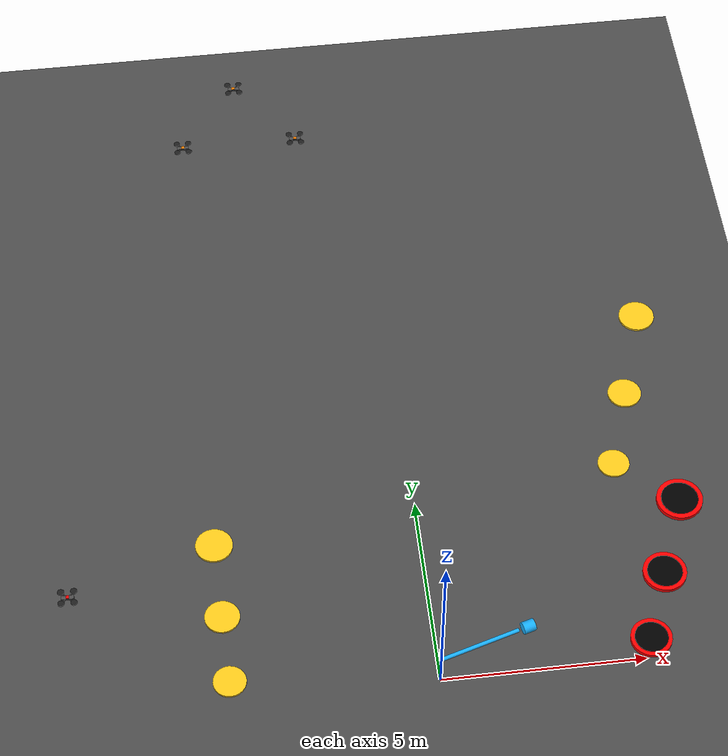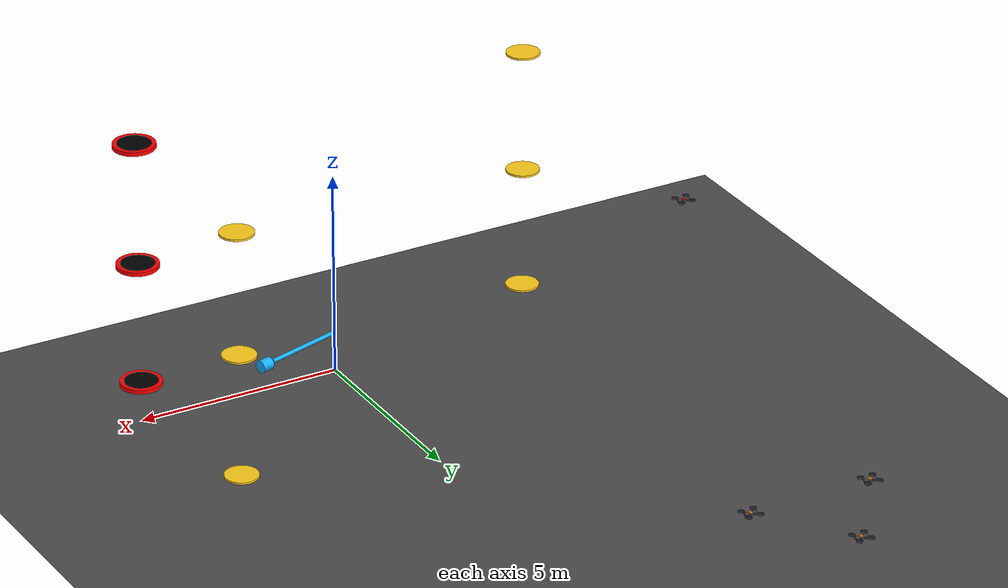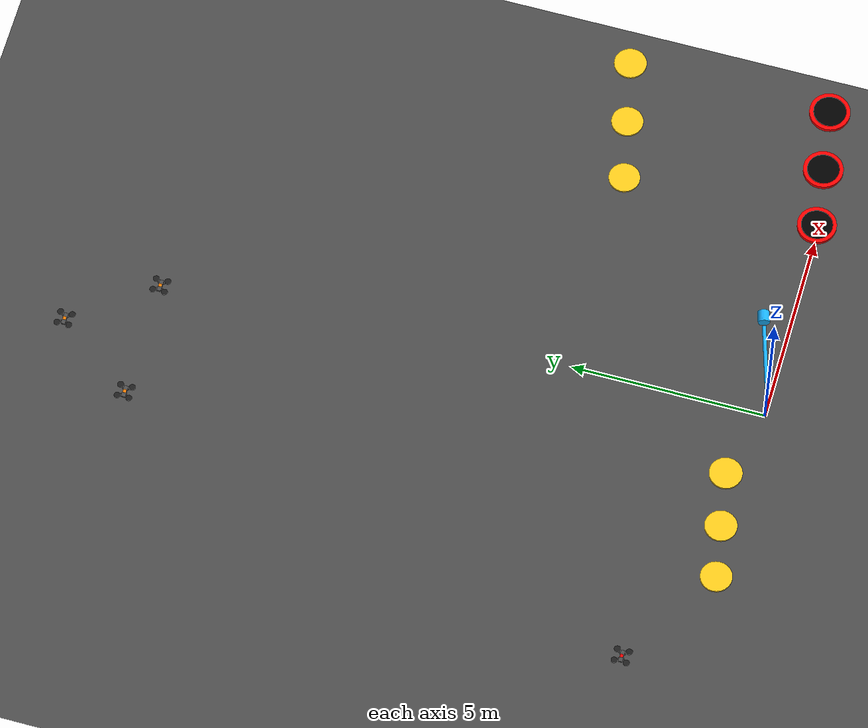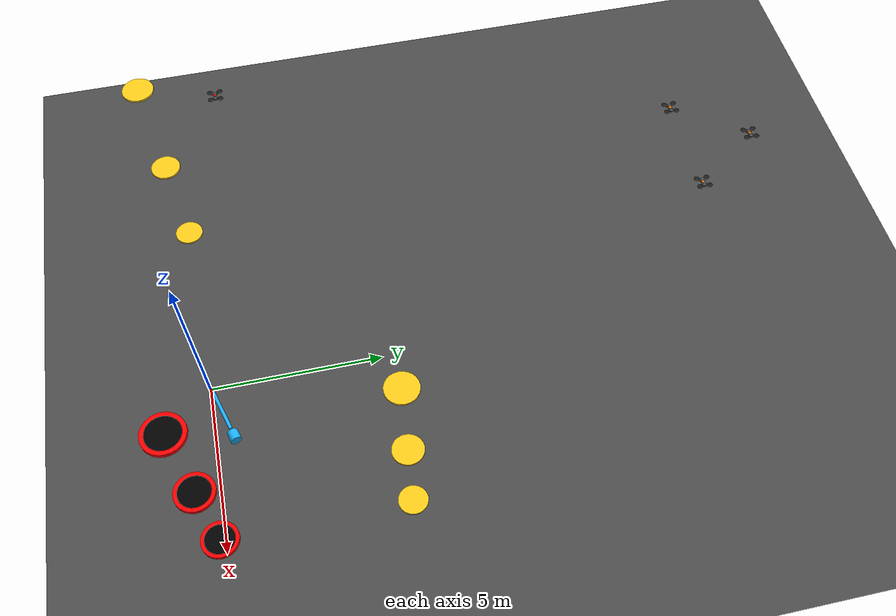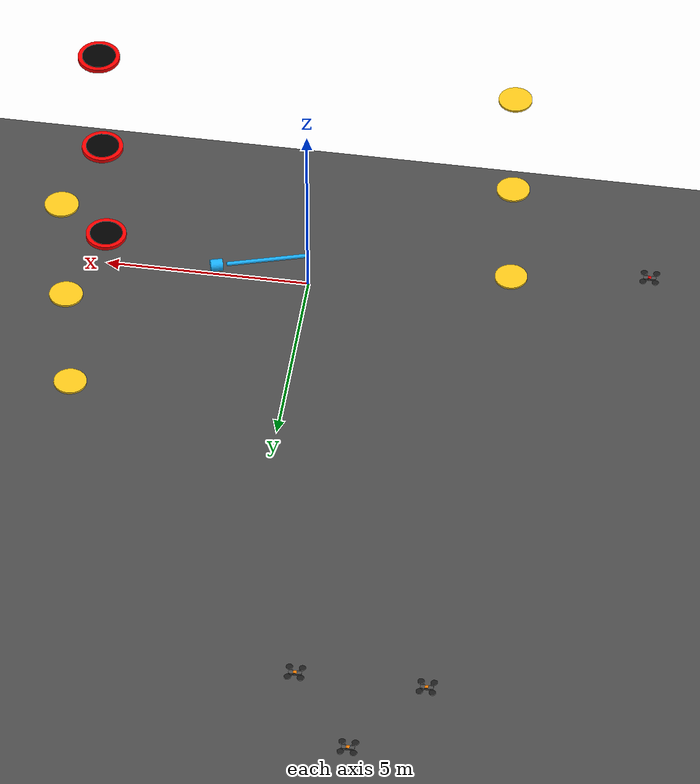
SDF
<sdf version="1.6">
 <world name="formation_comparison_world">
  <model name="ground">
   <static>true</static>
   <link name="link">
    <collision name="collision">
     <geometry><plane><normal>0 0 1</normal><size>100 100</size></plane></geometry>
    </collision>
    <visual name="visual">
     <geometry><plane><normal>0 0 1</normal><size>100 100</size></plane></geometry>
     <material>
      <script><uri>file://media/materials/scripts/gazebo.material</uri><name>Gazebo/Asphalt</name></script>
     </material>
    </visual>
   </link>
  </model>
  <model name="agent_5">
   <pose>-8.5 1.5 3.0 0 0 0</pose>
   <static>false</static>
   <link name="base_link">
    <inertial><mass>1.5</mass><inertia><ixx>0.03</ixx><iyy>0.03</iyy><izz>0.05</izz></inertia></inertial>
    <visual name="body">
     <geometry><box><size>0.3 0.1 0.05</size></box></geometry>
     <material>
      <script><uri>file://media/materials/scripts/gazebo.material</uri><name>Gazebo/DarkGrey</name></script>
     </material>
    </visual>
    <visual name="arm1">
     <pose>0.1 0.1 0 0 0 0.785</pose>
     <geometry><box><size>0.25 0.02 0.02</size></box></geometry>
     <material>
      <script><uri>file://media/materials/scripts/gazebo.material</uri><name>Gazebo/DarkGrey</name></script>
     </material>
    </visual>
    <visual name="arm2">
     <pose>-0.1 0.1 0 0 0 -0.785</pose>
     <geometry><box><size>0.25 0.02 0.02</size></box></geometry>
     <material>
      <script><uri>file://media/materials/scripts/gazebo.material</uri><name>Gazebo/DarkGrey</name></script>
     </material>
    </visual>
    <visual name="arm3">
     <pose>0.1 -0.1 0 0 0 -0.785</pose>
     <geometry><box><size>0.25 0.02 0.02</size></box></geometry>
     <material>
      <script><uri>file://media/materials/scripts/gazebo.material</uri><name>Gazebo/DarkGrey</name></script>
     </material>
    </visual>
    <visual name="arm4">
     <pose>-0.1 -0.1 0 0 0 0.785</pose>
     <geometry><box><size>0.25 0.02 0.02</size></box></geometry>
     <material>
      <script><uri>file://media/materials/scripts/gazebo.material</uri><name>Gazebo/DarkGrey</name></script>
     </material>
    </visual>
    <visual name="indicator">
     <pose>0 0 0.03 0 0 0</pose>
     <geometry><box><size>0.08 0.08 0.01</size></box></geometry>
     <material><ambient>1 0 0 1</ambient><diffuse>1 0 0 1</diffuse><emissive>1 0 0 1</emissive></material>
    </visual>
    <visual name="prop_fl">
     <pose>0.15 0.15 0.02 0 0 0</pose>
     <geometry><cylinder><radius>0.08</radius><length>0.01</length></cylinder></geometry>
     <material>
      <script><uri>file://media/materials/scripts/gazebo.material</uri><name>Gazebo/Black</name></script>
     </material>
    </visual>
    <visual name="prop_fr">
     <pose>0.15 -0.15 0.02 0 0 0</pose>
     <geometry><cylinder><radius>0.08</radius><length>0.01</length></cylinder></geometry>
     <material>
      <script><uri>file://media/materials/scripts/gazebo.material</uri><name>Gazebo/Black</name></script>
     </material>
    </visual>
    <visual name="prop_rl">
     <pose>-0.15 0.15 0.02 0 0 0</pose>
     <geometry><cylinder><radius>0.08</radius><length>0.01</length></cylinder></geometry>
     <material>
      <script><uri>file://media/materials/scripts/gazebo.material</uri><name>Gazebo/Black</name></script>
     </material>
    </visual>
    <visual name="prop_rr">
     <pose>-0.15 -0.15 0.02 0 0 0</pose>
     <geometry><cylinder><radius>0.08</radius><length>0.01</length></cylinder></geometry>
     <material>
      <script><uri>file://media/materials/scripts/gazebo.material</uri><name>Gazebo/Black</name></script>
     </material>
    </visual>
    <collision name="collision"><geometry><box><size>0.4 0.4 0.1</size></box></geometry></collision>
   </link>
   <plugin name="simple_drone_plugin" filename="libsimple_drone_plugin.so">
    <namespace>agent_5</namespace>
    <target_altitude>3.0</target_altitude>
   </plugin>
  </model>
  <model name="agent_6">
   <pose>-5 15.0 3.0 0 0 0</pose>
   <static>false</static>
   <link name="base_link">
    <inertial><mass>1.5</mass><inertia><ixx>0.03</ixx><iyy>0.03</iyy><izz>0.05</izz></inertia></inertial>
    <visual name="body">
     <geometry><box><size>0.3 0.1 0.05</size></box></geometry>
     <material>
      <script><uri>file://media/materials/scripts/gazebo.material</uri><name>Gazebo/DarkGrey</name></script>
     </material>
    </visual>
    <visual name="arm1">
     <pose>0.1 0.1 0 0 0 0.785</pose>
     <geometry><box><size>0.25 0.02 0.02</size></box></geometry>
     <material>
      <script><uri>file://media/materials/scripts/gazebo.material</uri><name>Gazebo/DarkGrey</name></script>
     </material>
    </visual>
    <visual name="arm2">
     <pose>-0.1 0.1 0 0 0 -0.785</pose>
     <geometry><box><size>0.25 0.02 0.02</size></box></geometry>
     <material>
      <script><uri>file://media/materials/scripts/gazebo.material</uri><name>Gazebo/DarkGrey</name></script>
     </material>
    </visual>
    <visual name="arm3">
     <pose>0.1 -0.1 0 0 0 -0.785</pose>
     <geometry><box><size>0.25 0.02 0.02</size></box></geometry>
     <material>
      <script><uri>file://media/materials/scripts/gazebo.material</uri><name>Gazebo/DarkGrey</name></script>
     </material>
    </visual>
    <visual name="arm4">
     <pose>-0.1 -0.1 0 0 0 0.785</pose>
     <geometry><box><size>0.25 0.02 0.02</size></box></geometry>
     <material>
      <script><uri>file://media/materials/scripts/gazebo.material</uri><name>Gazebo/DarkGrey</name></script>
     </material>
    </visual>
    <visual name="indicator">
     <pose>0 0 0.03 0 0 0</pose>
     <geometry><box><size>0.08 0.08 0.01</size></box></geometry>
     <material><ambient>1 0.5 0 1</ambient><diffuse>1 0.5 0 1</diffuse><emissive>1 0.5 0 1</emissive></material>
    </visual>
    <visual name="prop_fl">
     <pose>0.15 0.15 0.02 0 0 0</pose>
     <geometry><cylinder><radius>0.08</radius><length>0.01</length></cylinder></geometry>
     <material>
      <script><uri>file://media/materials/scripts/gazebo.material</uri><name>Gazebo/Black</name></script>
     </material>
    </visual>
    <visual name="prop_fr">
     <pose>0.15 -0.15 0.02 0 0 0</pose>
     <geometry><cylinder><radius>0.08</radius><length>0.01</length></cylinder></geometry>
     <material>
      <script><uri>file://media/materials/scripts/gazebo.material</uri><name>Gazebo/Black</name></script>
     </material>
    </visual>
    <visual name="prop_rl">
     <pose>-0.15 0.15 0.02 0 0 0</pose>
     <geometry><cylinder><radius>0.08</radius><length>0.01</length></cylinder></geometry>
     <material>
      <script><uri>file://media/materials/scripts/gazebo.material</uri><name>Gazebo/Black</name></script>
     </material>
    </visual>
    <visual name="prop_rr">
     <pose>-0.15 -0.15 0.02 0 0 0</pose>
     <geometry><cylinder><radius>0.08</radius><length>0.01</length></cylinder></geometry>
     <material>
      <script><uri>file://media/materials/scripts/gazebo.material</uri><name>Gazebo/Black</name></script>
     </material>
    </visual>
    <collision name="collision"><geometry><box><size>0.4 0.4 0.1</size></box></geometry></collision>
   </link>
   <plugin name="simple_drone_plugin" filename="libsimple_drone_plugin.so">
    <namespace>agent_6</namespace>
    <target_altitude>3.0</target_altitude>
   </plugin>
  </model>
  <model name="agent_7">
   <pose>-2 15.0 3.0 0 0 0</pose>
   <static>false</static>
   <link name="base_link">
    <inertial><mass>1.5</mass><inertia><ixx>0.03</ixx><iyy>0.03</iyy><izz>0.05</izz></inertia></inertial>
    <visual name="body">
     <geometry><box><size>0.3 0.1 0.05</size></box></geometry>
     <material>
      <script><uri>file://media/materials/scripts/gazebo.material</uri><name>Gazebo/DarkGrey</name></script>
     </material>
    </visual>
    <visual name="arm1">
     <pose>0.1 0.1 0 0 0 0.785</pose>
     <geometry><box><size>0.25 0.02 0.02</size></box></geometry>
     <material>
      <script><uri>file://media/materials/scripts/gazebo.material</uri><name>Gazebo/DarkGrey</name></script>
     </material>
    </visual>
    <visual name="arm2">
     <pose>-0.1 0.1 0 0 0 -0.785</pose>
     <geometry><box><size>0.25 0.02 0.02</size></box></geometry>
     <material>
      <script><uri>file://media/materials/scripts/gazebo.material</uri><name>Gazebo/DarkGrey</name></script>
     </material>
    </visual>
    <visual name="arm3">
     <pose>0.1 -0.1 0 0 0 -0.785</pose>
     <geometry><box><size>0.25 0.02 0.02</size></box></geometry>
     <material>
      <script><uri>file://media/materials/scripts/gazebo.material</uri><name>Gazebo/DarkGrey</name></script>
     </material>
    </visual>
    <visual name="arm4">
     <pose>-0.1 -0.1 0 0 0 0.785</pose>
     <geometry><box><size>0.25 0.02 0.02</size></box></geometry>
     <material>
      <script><uri>file://media/materials/scripts/gazebo.material</uri><name>Gazebo/DarkGrey</name></script>
     </material>
    </visual>
    <visual name="indicator">
     <pose>0 0 0.03 0 0 0</pose>
     <geometry><box><size>0.08 0.08 0.01</size></box></geometry>
     <material><ambient>1 0.5 0 1</ambient><diffuse>1 0.5 0 1</diffuse><emissive>1 0.5 0 1</emissive></material>
    </visual>
    <visual name="prop_fl">
     <pose>0.15 0.15 0.02 0 0 0</pose>
     <geometry><cylinder><radius>0.08</radius><length>0.01</length></cylinder></geometry>
     <material>
      <script><uri>file://media/materials/scripts/gazebo.material</uri><name>Gazebo/Black</name></script>
     </material>
    </visual>
    <visual name="prop_fr">
     <pose>0.15 -0.15 0.02 0 0 0</pose>
     <geometry><cylinder><radius>0.08</radius><length>0.01</length></cylinder></geometry>
     <material>
      <script><uri>file://media/materials/scripts/gazebo.material</uri><name>Gazebo/Black</name></script>
     </material>
    </visual>
    <visual name="prop_rl">
     <pose>-0.15 0.15 0.02 0 0 0</pose>
     <geometry><cylinder><radius>0.08</radius><length>0.01</length></cylinder></geometry>
     <material>
      <script><uri>file://media/materials/scripts/gazebo.material</uri><name>Gazebo/Black</name></script>
     </material>
    </visual>
    <visual name="prop_rr">
     <pose>-0.15 -0.15 0.02 0 0 0</pose>
     <geometry><cylinder><radius>0.08</radius><length>0.01</length></cylinder></geometry>
     <material>
      <script><uri>file://media/materials/scripts/gazebo.material</uri><name>Gazebo/Black</name></script>
     </material>
    </visual>
    <collision name="collision"><geometry><box><size>0.4 0.4 0.1</size></box></geometry></collision>
   </link>
   <plugin name="simple_drone_plugin" filename="libsimple_drone_plugin.so">
    <namespace>agent_7</namespace>
    <target_altitude>3.0</target_altitude>
   </plugin>
  </model>
  <model name="agent_8">
   <pose>-3.5 17.0 3.0 0 0 0</pose>
   <static>false</static>
   <link name="base_link">
    <inertial><mass>1.5</mass><inertia><ixx>0.03</ixx><iyy>0.03</iyy><izz>0.05</izz></inertia></inertial>
    <visual name="body">
     <geometry><box><size>0.3 0.1 0.05</size></box></geometry>
     <material>
      <script><uri>file://media/materials/scripts/gazebo.material</uri><name>Gazebo/DarkGrey</name></script>
     </material>
    </visual>
    <visual name="arm1">
     <pose>0.1 0.1 0 0 0 0.785</pose>
     <geometry><box><size>0.25 0.02 0.02</size></box></geometry>
     <material>
      <script><uri>file://media/materials/scripts/gazebo.material</uri><name>Gazebo/DarkGrey</name></script>
     </material>
    </visual>
    <visual name="arm2">
     <pose>-0.1 0.1 0 0 0 -0.785</pose>
     <geometry><box><size>0.25 0.02 0.02</size></box></geometry>
     <material>
      <script><uri>file://media/materials/scripts/gazebo.material</uri><name>Gazebo/DarkGrey</name></script>
     </material>
    </visual>
    <visual name="arm3">
     <pose>0.1 -0.1 0 0 0 -0.785</pose>
     <geometry><box><size>0.25 0.02 0.02</size></box></geometry>
     <material>
      <script><uri>file://media/materials/scripts/gazebo.material</uri><name>Gazebo/DarkGrey</name></script>
     </material>
    </visual>
    <visual name="arm4">
     <pose>-0.1 -0.1 0 0 0 0.785</pose>
     <geometry><box><size>0.25 0.02 0.02</size></box></geometry>
     <material>
      <script><uri>file://media/materials/scripts/gazebo.material</uri><name>Gazebo/DarkGrey</name></script>
     </material>
    </visual>
    <visual name="indicator">
     <pose>0 0 0.03 0 0 0</pose>
     <geometry><box><size>0.08 0.08 0.01</size></box></geometry>
     <material><ambient>1 0.5 0 1</ambient><diffuse>1 0.5 0 1</diffuse><emissive>1 0.5 0 1</emissive></material>
    </visual>
    <visual name="prop_fl">
     <pose>0.15 0.15 0.02 0 0 0</pose>
     <geometry><cylinder><radius>0.08</radius><length>0.01</length></cylinder></geometry>
     <material>
      <script><uri>file://media/materials/scripts/gazebo.material</uri><name>Gazebo/Black</name></script>
     </material>
    </visual>
    <visual name="prop_fr">
     <pose>0.15 -0.15 0.02 0 0 0</pose>
     <geometry><cylinder><radius>0.08</radius><length>0.01</length></cylinder></geometry>
     <material>
      <script><uri>file://media/materials/scripts/gazebo.material</uri><name>Gazebo/Black</name></script>
     </material>
    </visual>
    <visual name="prop_rl">
     <pose>-0.15 0.15 0.02 0 0 0</pose>
     <geometry><cylinder><radius>0.08</radius><length>0.01</length></cylinder></geometry>
     <material>
      <script><uri>file://media/materials/scripts/gazebo.material</uri><name>Gazebo/Black</name></script>
     </material>
    </visual>
    <visual name="prop_rr">
     <pose>-0.15 -0.15 0.02 0 0 0</pose>
     <geometry><cylinder><radius>0.08</radius><length>0.01</length></cylinder></geometry>
     <material>
      <script><uri>file://media/materials/scripts/gazebo.material</uri><name>Gazebo/Black</name></script>
     </material>
    </visual>
    <collision name="collision"><geometry><box><size>0.4 0.4 0.1</size></box></geometry></collision>
   </link>
   <plugin name="simple_drone_plugin" filename="libsimple_drone_plugin.so">
    <namespace>agent_8</namespace>
    <target_altitude>3.0</target_altitude>
   </plugin>
  </model>
  <include><uri>model://wind_indicator</uri><name>wind_indicator</name><pose>0 0 0 0 0 0.291</pose></include>
  <include><uri>model://checkpoint_marker</uri><name>g0_p1</name><pose>5 5 1.0 0 0 0</pose></include>
  <include><uri>model://checkpoint_marker</uri><name>g0_p2</name><pose>-5 0 1.0 0 0 0</pose></include>
  <include><uri>model://finish_marker</uri><name>g0_finish</name><pose>5 0 1.0 0 0 0</pose></include>
  <include><uri>model://checkpoint_marker</uri><name>g1_p1</name><pose>5 5 4.0 0 0 0</pose></include>
  <include><uri>model://checkpoint_marker</uri><name>g1_p2</name><pose>-5 0 4.0 0 0 0</pose></include>
  <include><uri>model://finish_marker</uri><name>g1_finish</name><pose>5 0 4.0 0 0 0</pose></include>
  <include><uri>model://checkpoint_marker</uri><name>g2_p1</name><pose>5 5 7.0 0 0 0</pose></include>
  <include><uri>model://checkpoint_marker</uri><name>g2_p2</name><pose>-5 0 7.0 0 0 0</pose></include>
  <include><uri>model://finish_marker</uri><name>g2_finish</name><pose>5 0 7.0 0 0 0</pose></include>
 </world>
</sdf>
